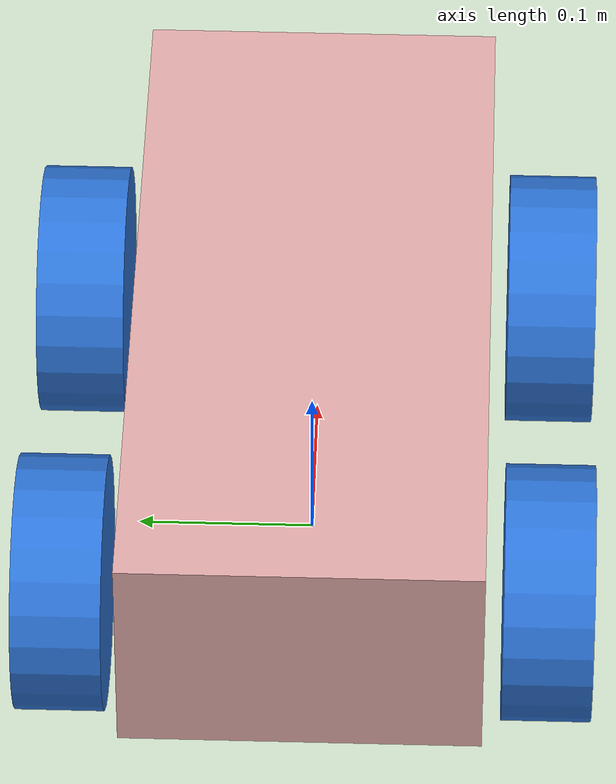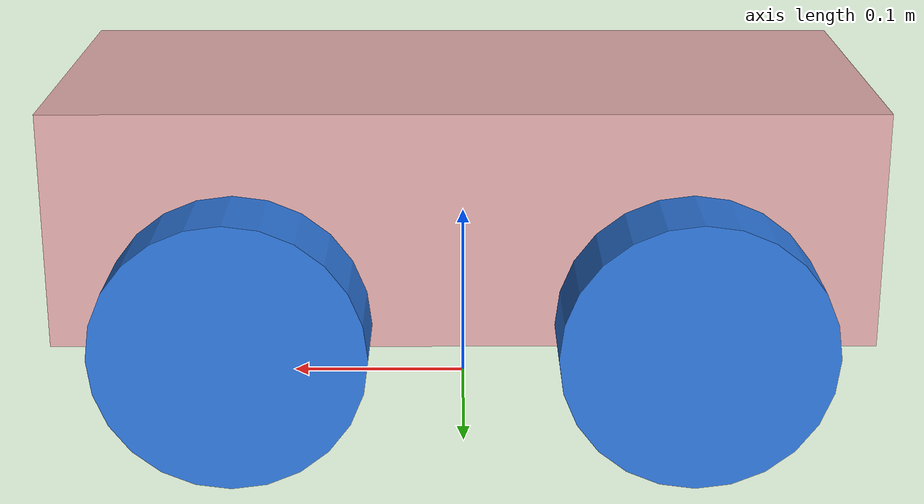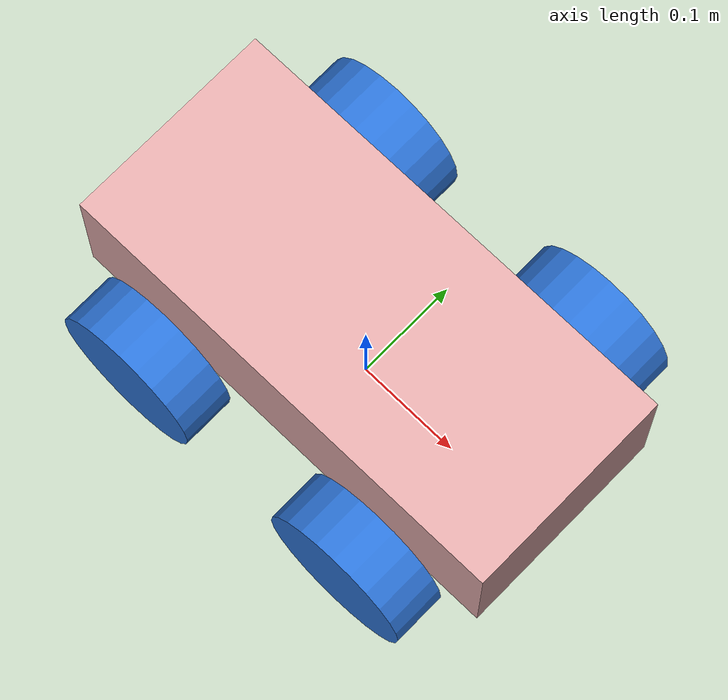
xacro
<?xml version="1.0"?>
<robot xmlns:xacro="http://ros.org/wiki/xacro">

  <xacro:include filename="mecanum_properties.xacro" />
  <xacro:include filename="base.xacro" />
  <xacro:include filename="mecanum_wheel.xacro" />

  <xacro:base
    length="${base_length}"
    width="${base_width}"
    height="${base_height}"
    mass="${base_mass}"
    wheel_radius="${wheel_radius}"
    wheel_pos_z="${wheel_pos_z}"
    />

  <xacro:mecanum_wheel
    side="front_left"
    radius="${wheel_radius}"
    width="${wheel_width}"
    pos_x="${wheel_pos_x}"
    pos_y="${wheel_pos_y}"
    pos_z="${wheel_pos_z}"
    mass="${wheel_mass}"
  />

  <xacro:mecanum_wheel
    side="front_right"
    radius="${wheel_radius}"
    width="${wheel_width}"
    pos_x="${wheel_pos_x}"
    pos_y="${-wheel_pos_y}"
    pos_z="${wheel_pos_z}"
    mass="${wheel_mass}"
  />
  <xacro:mecanum_wheel
    side="rear_left"
    radius="${wheel_radius}"
    width="${wheel_width}"
    pos_x="${-wheel_pos_x}"
    pos_y="${wheel_pos_y}"
    pos_z="${wheel_pos_z}"
    mass="${wheel_mass}"
  />

  <xacro:mecanum_wheel
    side="rear_right"
    radius="${wheel_radius}"
    width="${wheel_width}"
    pos_x="${-wheel_pos_x}"
    pos_y="${-wheel_pos_y}"
    pos_z="${wheel_pos_z}"
    mass="${wheel_mass}"
  />

</robot>

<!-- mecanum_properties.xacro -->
<robot xmlns:xacro="http://ros.org/wiki/xacro">

  <xacro:property name="base_length" value="0.445" />
  <xacro:property name="base_width" value="0.200" />
  <xacro:property name="base_height" value="0.129" />
  <xacro:property name="base_mass" value="10" />

  <xacro:property name="wheel_radius" value="0.07162" />
  <xacro:property name="wheel_width" value="0.05" />
  <xacro:property name="wheel_pos_x" value="0.120" />
  <xacro:property name="wheel_pos_y" value="0.1355" />
  <xacro:property name="wheel_pos_z" value="-0.04788" />
  <xacro:property name="wheel_mass" value=".6" />
  <xacro:property name="wheel_torque" value="20" />

</robot>

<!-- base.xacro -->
<robot xmlns:xacro="http://ros.org/wiki/xacro">

  <xacro:macro name="base" params="length width height mass wheel_radius wheel_pos_z">
    <link name="base_footprint"/>

    <link name="base_link">
      <visual>
        <origin xyz="0 0 0" rpy="0 0 0"/>
        <geometry>
          <box size="${length} ${width} ${height}"/>
        </geometry>
        <material name="yellow">
          <color rgba="0.8784 0.6627 0.6627 1.0"/>
        </material>
      </visual>

      <collision>
        <origin xyz="0 0 0" rpy="0 0 0"/>
        <geometry>
          <box size="${length} ${width} ${height}"/>
        </geometry>
      </collision>

      <inertial>
        <origin xyz="0 0 0" rpy="0 0 0"/>
        <mass value="${mass}"/>
        <inertia ixx="${(1/12) * mass * ((width  * width)  + (height * height))}" ixy="0.0" ixz="0.0"
                 iyy="${(1/12) * mass * ((length * length) + (height * height))}" iyz="0.0"
                 izz="${(1/12) * mass * ((length * length) + (width  * width))}"/>
      </inertial>
    </link>

    <gazebo reference="base_link">
      <visual>
        <material>
          <ambient>0.8392 0.6314 0.0 1.0</ambient>
          <diffuse>0.8392 0.6314 0.0 1.0</diffuse>
          <specular>0.99 0.99 0.99 1.0</specular>
          <emissive>0.0 0.0 0.0 0.0</emissive>
        </material>
      </visual>
    </gazebo>

    <joint name="base_to_footprint" type="fixed">
      <parent link="base_footprint"/>
      <child link="base_link"/>
      <origin xyz="0 0 ${wheel_radius - wheel_pos_z}" rpy="0 0 0"/>
    </joint>
  </xacro:macro>

</robot>

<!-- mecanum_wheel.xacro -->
<robot xmlns:xacro="http://ros.org/wiki/xacro">

  <xacro:macro name="mecanum_wheel" params="side radius width pos_x pos_y pos_z mass">
    <link name="${side}_wheel_link">
      <visual>
        <origin xyz="0 0 0" rpy="${pi/2} 0 0"/>
        <geometry>
          <cylinder radius="${radius}" length="${width}"/>
        </geometry>
        <material name="blue">
            <color rgba="0.1764 0.4588 0.8509 1.0"/>
        </material>
      </visual>
      <collision>
        <origin xyz="0 0 0" rpy="${pi/2} 0 0"/>
        <geometry>
          <cylinder radius="${radius}" length="${width}"/>
        </geometry>
      </collision>

      <inertial>
        <origin xyz="0 0 0" rpy="0 0 0"/>
        <mass value="${mass}"/>
        <inertia ixx="${(2/5) * mass * (radius * radius)}" ixy="0" ixz="0"
                 iyy="${(2/5) * mass * (radius * radius)}" iyz="0"
                 izz="${(2/5) * mass * (radius * radius)}" />
      </inertial>
    </link>

    <gazebo reference="${side}_wheel_link">
        <mu1>0.01</mu1>
        <mu2>0.01</mu2>
    </gazebo>

    <gazebo reference="${side}_wheel_link">
      <visual>
        <material>
          <ambient>0.1764 0.4588 0.8509 1.0</ambient>
          <diffuse>0.1764 0.4588 0.8509 1.0</diffuse>
          <specular>0.1764 0.4588 0.8509 1.0</specular>
          <emissive>0.0 0.0 0.0 0.0</emissive>
        </material>
      </visual>
    </gazebo>
    <joint name="${side}_wheel_joint" type="continuous">
      <axis xyz="0 1 0" />
      <parent link="base_link"/>
      <child link="${side}_wheel_link"/>
      <origin xyz="${pos_x} ${pos_y} ${pos_z}" rpy="0 0 0"/>
    </joint>
  </xacro:macro>

</robot>
